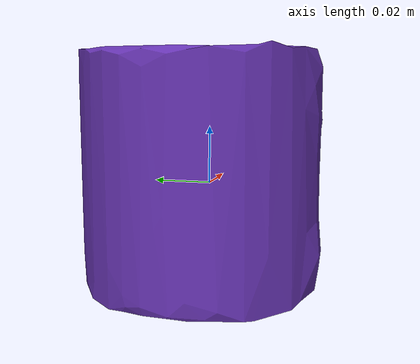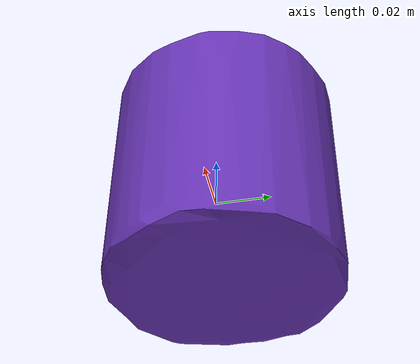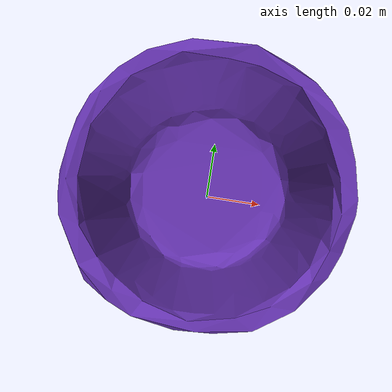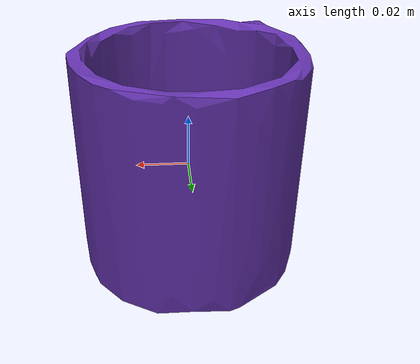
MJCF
<mujoco model="top_watertight_tiny">
  <default>
    <default group="2" type="mesh" contype="0" conaffinity="0">
      <geom group="2" type="mesh" contype="0" conaffinity="0"/>
    </default>
    <default group="3" type="mesh">
      <geom group="3" type="mesh"/>
    </default>
  </default>
  <asset>
    <mesh file="top_watertight_tiny.obj"/>
    <mesh file="top_watertight_tiny_collision_0.obj"/>
    <mesh file="top_watertight_tiny_collision_1.obj"/>
    <mesh file="top_watertight_tiny_collision_2.obj"/>
    <mesh file="top_watertight_tiny_collision_3.obj"/>
    <mesh file="top_watertight_tiny_collision_4.obj"/>
    <mesh file="top_watertight_tiny_collision_5.obj"/>
    <mesh file="top_watertight_tiny_collision_6.obj"/>
    <mesh file="top_watertight_tiny_collision_7.obj"/>
    <mesh file="top_watertight_tiny_collision_8.obj"/>
    <mesh file="top_watertight_tiny_collision_9.obj"/>
    <mesh file="top_watertight_tiny_collision_10.obj"/>
    <mesh file="top_watertight_tiny_collision_11.obj"/>
    <mesh file="top_watertight_tiny_collision_12.obj"/>
    <mesh file="top_watertight_tiny_collision_13.obj"/>
    <mesh file="top_watertight_tiny_collision_14.obj"/>
    <mesh file="top_watertight_tiny_collision_15.obj"/>
    <mesh file="top_watertight_tiny_collision_16.obj"/>
    <mesh file="top_watertight_tiny_collision_17.obj"/>
    <mesh file="top_watertight_tiny_collision_18.obj"/>
    <mesh file="top_watertight_tiny_collision_19.obj"/>
    <mesh file="top_watertight_tiny_collision_20.obj"/>
    <mesh file="top_watertight_tiny_collision_21.obj"/>
    <mesh file="top_watertight_tiny_collision_22.obj"/>
    <mesh file="top_watertight_tiny_collision_23.obj"/>
    <mesh file="top_watertight_tiny_collision_24.obj"/>
    <mesh file="top_watertight_tiny_collision_25.obj"/>
    <mesh file="top_watertight_tiny_collision_26.obj"/>
    <mesh file="top_watertight_tiny_collision_27.obj"/>
    <mesh file="top_watertight_tiny_collision_28.obj"/>
    <mesh file="top_watertight_tiny_collision_29.obj"/>
    <mesh file="top_watertight_tiny_collision_30.obj"/>
    <mesh file="top_watertight_tiny_collision_31.obj"/>
    <mesh file="top_watertight_tiny_collision_32.obj"/>
    <mesh file="top_watertight_tiny_collision_33.obj"/>
    <mesh file="top_watertight_tiny_collision_34.obj"/>
    <mesh file="top_watertight_tiny_collision_35.obj"/>
    <mesh file="top_watertight_tiny_collision_36.obj"/>
    <mesh file="top_watertight_tiny_collision_37.obj"/>
    <mesh file="top_watertight_tiny_collision_38.obj"/>
    <mesh file="top_watertight_tiny_collision_39.obj"/>
    <mesh file="top_watertight_tiny_collision_40.obj"/>
    <mesh file="top_watertight_tiny_collision_41.obj"/>
    <mesh file="top_watertight_tiny_collision_42.obj"/>
    <mesh file="top_watertight_tiny_collision_43.obj"/>
    <mesh file="top_watertight_tiny_collision_44.obj"/>
    <mesh file="top_watertight_tiny_collision_45.obj"/>
    <mesh file="top_watertight_tiny_collision_46.obj"/>
    <mesh file="top_watertight_tiny_collision_47.obj"/>
    <mesh file="top_watertight_tiny_collision_48.obj"/>
    <mesh file="top_watertight_tiny_collision_49.obj"/>
    <mesh file="top_watertight_tiny_collision_50.obj"/>
    <mesh file="top_watertight_tiny_collision_51.obj"/>
    <mesh file="top_watertight_tiny_collision_52.obj"/>
    <mesh file="top_watertight_tiny_collision_53.obj"/>
    <mesh file="top_watertight_tiny_collision_54.obj"/>
    <mesh file="top_watertight_tiny_collision_55.obj"/>
    <mesh file="top_watertight_tiny_collision_56.obj"/>
    <mesh file="top_watertight_tiny_collision_57.obj"/>
    <mesh file="top_watertight_tiny_collision_58.obj"/>
    <mesh file="top_watertight_tiny_collision_59.obj"/>
    <mesh file="top_watertight_tiny_collision_60.obj"/>
    <mesh file="top_watertight_tiny_collision_61.obj"/>
    <mesh file="top_watertight_tiny_collision_62.obj"/>
    <mesh file="top_watertight_tiny_collision_63.obj"/>
    <mesh file="top_watertight_tiny_collision_64.obj"/>
    <mesh file="top_watertight_tiny_collision_65.obj"/>
    <mesh file="top_watertight_tiny_collision_66.obj"/>
    <mesh file="top_watertight_tiny_collision_67.obj"/>
    <mesh file="top_watertight_tiny_collision_68.obj"/>
    <mesh file="top_watertight_tiny_collision_69.obj"/>
    <mesh file="top_watertight_tiny_collision_70.obj"/>
    <mesh file="top_watertight_tiny_collision_71.obj"/>
    <mesh file="top_watertight_tiny_collision_72.obj"/>
    <mesh file="top_watertight_tiny_collision_73.obj"/>
    <mesh file="top_watertight_tiny_collision_74.obj"/>
    <mesh file="top_watertight_tiny_collision_75.obj"/>
    <mesh file="top_watertight_tiny_collision_76.obj"/>
    <mesh file="top_watertight_tiny_collision_77.obj"/>
    <mesh file="top_watertight_tiny_collision_78.obj"/>
    <mesh file="top_watertight_tiny_collision_79.obj"/>
    <mesh file="top_watertight_tiny_collision_80.obj"/>
    <mesh file="top_watertight_tiny_collision_81.obj"/>
    <mesh file="top_watertight_tiny_collision_82.obj"/>
    <mesh file="top_watertight_tiny_collision_83.obj"/>
    <mesh file="top_watertight_tiny_collision_84.obj"/>
    <mesh file="top_watertight_tiny_collision_85.obj"/>
    <mesh file="top_watertight_tiny_collision_86.obj"/>
    <mesh file="top_watertight_tiny_collision_87.obj"/>
    <mesh file="top_watertight_tiny_collision_88.obj"/>
    <mesh file="top_watertight_tiny_collision_89.obj"/>
    <mesh file="top_watertight_tiny_collision_90.obj"/>
    <mesh file="top_watertight_tiny_collision_91.obj"/>
    <mesh file="top_watertight_tiny_collision_92.obj"/>
    <mesh file="top_watertight_tiny_collision_93.obj"/>
    <mesh file="top_watertight_tiny_collision_94.obj"/>
    <mesh file="top_watertight_tiny_collision_95.obj"/>
    <mesh file="top_watertight_tiny_collision_96.obj"/>
    <mesh file="top_watertight_tiny_collision_97.obj"/>
    <mesh file="top_watertight_tiny_collision_98.obj"/>
    <mesh file="top_watertight_tiny_collision_99.obj"/>
    <mesh file="top_watertight_tiny_collision_100.obj"/>
    <mesh file="top_watertight_tiny_collision_101.obj"/>
    <mesh file="top_watertight_tiny_collision_102.obj"/>
    <mesh file="top_watertight_tiny_collision_103.obj"/>
    <mesh file="top_watertight_tiny_collision_104.obj"/>
    <mesh file="top_watertight_tiny_collision_105.obj"/>
    <mesh file="top_watertight_tiny_collision_106.obj"/>
    <mesh file="top_watertight_tiny_collision_107.obj"/>
    <mesh file="top_watertight_tiny_collision_108.obj"/>
    <mesh file="top_watertight_tiny_collision_109.obj"/>
    <mesh file="top_watertight_tiny_collision_110.obj"/>
    <mesh file="top_watertight_tiny_collision_111.obj"/>
    <mesh file="top_watertight_tiny_collision_112.obj"/>
    <mesh file="top_watertight_tiny_collision_113.obj"/>
    <mesh file="top_watertight_tiny_collision_114.obj"/>
    <mesh file="top_watertight_tiny_collision_115.obj"/>
    <mesh file="top_watertight_tiny_collision_116.obj"/>
    <mesh file="top_watertight_tiny_collision_117.obj"/>
    <mesh file="top_watertight_tiny_collision_118.obj"/>
    <mesh file="top_watertight_tiny_collision_119.obj"/>
    <mesh file="top_watertight_tiny_collision_120.obj"/>
    <mesh file="top_watertight_tiny_collision_121.obj"/>
    <mesh file="top_watertight_tiny_collision_122.obj"/>
    <mesh file="top_watertight_tiny_collision_123.obj"/>
    <mesh file="top_watertight_tiny_collision_124.obj"/>
    <mesh file="top_watertight_tiny_collision_125.obj"/>
    <mesh file="top_watertight_tiny_collision_126.obj"/>
    <mesh file="top_watertight_tiny_collision_127.obj"/>
    <mesh file="top_watertight_tiny_collision_128.obj"/>
    <mesh file="top_watertight_tiny_collision_129.obj"/>
    <mesh file="top_watertight_tiny_collision_130.obj"/>
    <mesh file="top_watertight_tiny_collision_131.obj"/>
    <mesh file="top_watertight_tiny_collision_132.obj"/>
    <mesh file="top_watertight_tiny_collision_133.obj"/>
    <mesh file="top_watertight_tiny_collision_134.obj"/>
    <mesh file="top_watertight_tiny_collision_135.obj"/>
    <mesh file="top_watertight_tiny_collision_136.obj"/>
    <mesh file="top_watertight_tiny_collision_137.obj"/>
    <mesh file="top_watertight_tiny_collision_138.obj"/>
    <mesh file="top_watertight_tiny_collision_139.obj"/>
    <mesh file="top_watertight_tiny_collision_140.obj"/>
    <mesh file="top_watertight_tiny_collision_141.obj"/>
    <mesh file="top_watertight_tiny_collision_142.obj"/>
    <mesh file="top_watertight_tiny_collision_143.obj"/>
    <mesh file="top_watertight_tiny_collision_144.obj"/>
    <mesh file="top_watertight_tiny_collision_145.obj"/>
    <mesh file="top_watertight_tiny_collision_146.obj"/>
    <mesh file="top_watertight_tiny_collision_147.obj"/>
    <mesh file="top_watertight_tiny_collision_148.obj"/>
    <mesh file="top_watertight_tiny_collision_149.obj"/>
    <mesh file="top_watertight_tiny_collision_150.obj"/>
    <mesh file="top_watertight_tiny_collision_151.obj"/>
    <mesh file="top_watertight_tiny_collision_152.obj"/>
    <mesh file="top_watertight_tiny_collision_153.obj"/>
    <mesh file="top_watertight_tiny_collision_154.obj"/>
    <mesh file="top_watertight_tiny_collision_155.obj"/>
    <mesh file="top_watertight_tiny_collision_156.obj"/>
    <mesh file="top_watertight_tiny_collision_157.obj"/>
    <mesh file="top_watertight_tiny_collision_158.obj"/>
    <mesh file="top_watertight_tiny_collision_159.obj"/>
    <mesh file="top_watertight_tiny_collision_160.obj"/>
    <mesh file="top_watertight_tiny_collision_161.obj"/>
    <mesh file="top_watertight_tiny_collision_162.obj"/>
    <mesh file="top_watertight_tiny_collision_163.obj"/>
    <mesh file="top_watertight_tiny_collision_164.obj"/>
    <mesh file="top_watertight_tiny_collision_165.obj"/>
    <mesh file="top_watertight_tiny_collision_166.obj"/>
    <mesh file="top_watertight_tiny_collision_167.obj"/>
    <mesh file="top_watertight_tiny_collision_168.obj"/>
    <mesh file="top_watertight_tiny_collision_169.obj"/>
    <mesh file="top_watertight_tiny_collision_170.obj"/>
    <mesh file="top_watertight_tiny_collision_171.obj"/>
    <mesh file="top_watertight_tiny_collision_172.obj"/>
    <mesh file="top_watertight_tiny_collision_173.obj"/>
    <mesh file="top_watertight_tiny_collision_174.obj"/>
    <mesh file="top_watertight_tiny_collision_175.obj"/>
    <mesh file="top_watertight_tiny_collision_176.obj"/>
    <mesh file="top_watertight_tiny_collision_177.obj"/>
    <mesh file="top_watertight_tiny_collision_178.obj"/>
    <mesh file="top_watertight_tiny_collision_179.obj"/>
    <mesh file="top_watertight_tiny_collision_180.obj"/>
    <mesh file="top_watertight_tiny_collision_181.obj"/>
    <mesh file="top_watertight_tiny_collision_182.obj"/>
    <mesh file="top_watertight_tiny_collision_183.obj"/>
    <mesh file="top_watertight_tiny_collision_184.obj"/>
    <mesh file="top_watertight_tiny_collision_185.obj"/>
    <mesh file="top_watertight_tiny_collision_186.obj"/>
    <mesh file="top_watertight_tiny_collision_187.obj"/>
    <mesh file="top_watertight_tiny_collision_188.obj"/>
    <mesh file="top_watertight_tiny_collision_189.obj"/>
    <mesh file="top_watertight_tiny_collision_190.obj"/>
    <mesh file="top_watertight_tiny_collision_191.obj"/>
    <mesh file="top_watertight_tiny_collision_192.obj"/>
    <mesh file="top_watertight_tiny_collision_193.obj"/>
    <mesh file="top_watertight_tiny_collision_194.obj"/>
    <mesh file="top_watertight_tiny_collision_195.obj"/>
    <mesh file="top_watertight_tiny_collision_196.obj"/>
    <mesh file="top_watertight_tiny_collision_197.obj"/>
    <mesh file="top_watertight_tiny_collision_198.obj"/>
    <mesh file="top_watertight_tiny_collision_199.obj"/>
    <mesh file="top_watertight_tiny_collision_200.obj"/>
    <mesh file="top_watertight_tiny_collision_201.obj"/>
    <mesh file="top_watertight_tiny_collision_202.obj"/>
  </asset>
  <worldbody>
    <body name="top_watertight_tiny">
      <freejoint/>
      <geom mesh="top_watertight_tiny" group="2" type="mesh" rgba="0.4 0.2 0.7 1" contype="0" conaffinity="0"/>
      <geom mesh="top_watertight_tiny_collision_0" rgba="0.5142569149895492 0.4028784056796456 0.12472820860966638 1" group="3" type="mesh"/>
      <geom mesh="top_watertight_tiny_collision_1" rgba="0.12598872113837778 0.472261269850511 0.6646398829358032 1" group="3" type="mesh"/>
      <geom mesh="top_watertight_tiny_collision_2" rgba="0.14325315993852206 0.9929174780598744 0.289616131636783 1" group="3" type="mesh"/>
      <geom mesh="top_watertight_tiny_collision_3" rgba="0.4963522219700963 0.7538985264311836 0.8376818458728023 1" group="3" type="mesh"/>
      <geom mesh="top_watertight_tiny_collision_4" rgba="0.9957888750485467 0.8850339782636738 0.8004807364466267 1" group="3" type="mesh"/>
      <geom mesh="top_watertight_tiny_collision_5" rgba="0.02964998024524179 0.11544451310578296 0.5095602431639767 1" group="3" type="mesh"/>
      <geom mesh="top_watertight_tiny_collision_6" rgba="0.607688193933428 0.7295755148916955 0.22323535613933954 1" group="3" type="mesh"/>
      <geom mesh="top_watertight_tiny_collision_7" rgba="0.8198356422304849 0.4588857659043122 0.17468203134624216 1" group="3" type="mesh"/>
      <geom mesh="top_watertight_tiny_collision_8" rgba="0.4109202323005501 0.7865353193487384 0.8025968777486634 1" group="3" type="mesh"/>
      <geom mesh="top_watertight_tiny_collision_9" rgba="0.13245407167887435 0.870214486726726 0.07036848509018223 1" group="3" type="mesh"/>
      <geom mesh="top_watertight_tiny_collision_10" rgba="0.4477043144418468 0.24317269747876913 0.9888186315107121 1" group="3" type="mesh"/>
      <geom mesh="top_watertight_tiny_collision_11" rgba="0.8387652846737026 0.6045576386231928 0.8790665986751394 1" group="3" type="mesh"/>
      <geom mesh="top_watertight_tiny_collision_12" rgba="0.579833129389819 0.21482446532913557 0.627879127511125 1" group="3" type="mesh"/>
      <geom mesh="top_watertight_tiny_collision_13" rgba="0.11074216211688981 0.5432218166981729 0.49921623696065176 1" group="3" type="mesh"/>
      <geom mesh="top_watertight_tiny_collision_14" rgba="0.715747881127474 0.8036866196253701 0.6785291089003104 1" group="3" type="mesh"/>
      <geom mesh="top_watertight_tiny_collision_15" rgba="0.034020961984064346 0.7906066419840508 0.026587432173101888 1" group="3" type="mesh"/>
      <geom mesh="top_watertight_tiny_collision_16" rgba="0.15467964355230368 0.04544499319671058 0.8612668684640631 1" group="3" type="mesh"/>
      <geom mesh="top_watertight_tiny_collision_17" rgba="0.06119418619999595 0.2248204281367635 0.3147024627861853 1" group="3" type="mesh"/>
      <geom mesh="top_watertight_tiny_collision_18" rgba="0.570223509768119 0.902254032225745 0.4542139644159283 1" group="3" type="mesh"/>
      <geom mesh="top_watertight_tiny_collision_19" rgba="0.859953132350863 0.10136864570520865 0.8715195278851946 1" group="3" type="mesh"/>
      <geom mesh="top_watertight_tiny_collision_20" rgba="0.6037488457854419 0.15807487751888238 0.6835290228952923 1" group="3" type="mesh"/>
      <geom mesh="top_watertight_tiny_collision_21" rgba="0.6002284892819133 0.6315502652983798 0.2628929502040709 1" group="3" type="mesh"/>
      <geom mesh="top_watertight_tiny_collision_22" rgba="0.5468781331126176 0.6342653175360347 0.6406551652151523 1" group="3" type="mesh"/>
      <geom mesh="top_watertight_tiny_collision_23" rgba="0.06476708665361319 0.8012766053018897 0.39996037847751065 1" group="3" type="mesh"/>
      <geom mesh="top_watertight_tiny_collision_24" rgba="0.9135659159338279 0.0012921714451853417 0.24487407735726308 1" group="3" type="mesh"/>
      <geom mesh="top_watertight_tiny_collision_25" rgba="0.48588806666911377 0.6094159735392581 0.9695454978841802 1" group="3" type="mesh"/>
      <geom mesh="top_watertight_tiny_collision_26" rgba="0.06477115262206878 0.641116407507709 0.2577898116572427 1" group="3" type="mesh"/>
      <geom mesh="top_watertight_tiny_collision_27" rgba="0.280176198842775 0.8413351117251165 0.3798523868600854 1" group="3" type="mesh"/>
      <geom mesh="top_watertight_tiny_collision_28" rgba="0.007339012445196524 0.6974551694501596 0.7328326814803303 1" group="3" type="mesh"/>
      <geom mesh="top_watertight_tiny_collision_29" rgba="0.8218486324470013 0.035029587897652315 0.6126799499211816 1" group="3" type="mesh"/>
      <geom mesh="top_watertight_tiny_collision_30" rgba="0.13876620527068217 0.47858419061718793 0.006230233682857134 1" group="3" type="mesh"/>
      <geom mesh="top_watertight_tiny_collision_31" rgba="0.3179496493202183 0.9318993565794695 0.37483485383947446 1" group="3" type="mesh"/>
      <geom mesh="top_watertight_tiny_collision_32" rgba="0.48131051538156044 0.42649109025557397 0.2032680342900074 1" group="3" type="mesh"/>
      <geom mesh="top_watertight_tiny_collision_33" rgba="0.1545929992080035 0.9081246341230945 0.08590773038864563 1" group="3" type="mesh"/>
      <geom mesh="top_watertight_tiny_collision_34" rgba="0.2879007096157965 0.16543446283952412 0.01889046989890919 1" group="3" type="mesh"/>
      <geom mesh="top_watertight_tiny_collision_35" rgba="0.6240167646190452 0.03825076328762467 0.44876742924817414 1" group="3" type="mesh"/>
      <geom mesh="top_watertight_tiny_collision_36" rgba="0.30350625681836374 0.2510697860255098 0.04941410763637055 1" group="3" type="mesh"/>
      <geom mesh="top_watertight_tiny_collision_37" rgba="0.08361431805413233 0.9918703682426785 0.75307690013631 1" group="3" type="mesh"/>
      <geom mesh="top_watertight_tiny_collision_38" rgba="0.5534518008713998 0.4125123899823966 0.19120026314972594 1" group="3" type="mesh"/>
      <geom mesh="top_watertight_tiny_collision_39" rgba="0.44633004397816944 0.8608129720264853 0.9126183748867792 1" group="3" type="mesh"/>
      <geom mesh="top_watertight_tiny_collision_40" rgba="0.7898369572126378 0.379065891751043 0.11746996471758331 1" group="3" type="mesh"/>
      <geom mesh="top_watertight_tiny_collision_41" rgba="0.2085625629136414 0.33104137017016055 0.12712121271646415 1" group="3" type="mesh"/>
      <geom mesh="top_watertight_tiny_collision_42" rgba="0.35019722616979454 0.9249790834706677 0.9596856179929996 1" group="3" type="mesh"/>
      <geom mesh="top_watertight_tiny_collision_43" rgba="0.5643405648346062 0.23163341991082387 0.9529896828035102 1" group="3" type="mesh"/>
      <geom mesh="top_watertight_tiny_collision_44" rgba="0.9269651641311993 0.3014404431795855 0.02258847939795383 1" group="3" type="mesh"/>
      <geom mesh="top_watertight_tiny_collision_45" rgba="0.8737505200855279 0.8968852870327596 0.34622404045461175 1" group="3" type="mesh"/>
      <geom mesh="top_watertight_tiny_collision_46" rgba="0.9311275566280077 0.08805609909251799 0.9855376946857057 1" group="3" type="mesh"/>
      <geom mesh="top_watertight_tiny_collision_47" rgba="0.026769709981269818 0.26733362958053764 0.24799036233601535 1" group="3" type="mesh"/>
      <geom mesh="top_watertight_tiny_collision_48" rgba="0.03358863380253718 0.9995513892928786 0.6273186905183735 1" group="3" type="mesh"/>
      <geom mesh="top_watertight_tiny_collision_49" rgba="0.470239467781815 0.3524405938203067 0.5985460168443323 1" group="3" type="mesh"/>
      <geom mesh="top_watertight_tiny_collision_50" rgba="0.8374360499561663 0.3367518906674897 0.27481554210642944 1" group="3" type="mesh"/>
      <geom mesh="top_watertight_tiny_collision_51" rgba="0.9932852922281511 0.625179750606273 0.9659402025792678 1" group="3" type="mesh"/>
      <geom mesh="top_watertight_tiny_collision_52" rgba="0.9650511818126684 0.9356266208249084 0.05923642090857828 1" group="3" type="mesh"/>
      <geom mesh="top_watertight_tiny_collision_53" rgba="0.10711333952281477 0.6953057631915052 0.55724475581988 1" group="3" type="mesh"/>
      <geom mesh="top_watertight_tiny_collision_54" rgba="0.7533459064362743 0.3872167656577098 0.6909172747395381 1" group="3" type="mesh"/>
      <geom mesh="top_watertight_tiny_collision_55" rgba="0.562568774102076 0.8209984773095618 0.454207245801975 1" group="3" type="mesh"/>
      <geom mesh="top_watertight_tiny_collision_56" rgba="0.6065724543297119 0.7466657404057645 0.4888968504486365 1" group="3" type="mesh"/>
      <geom mesh="top_watertight_tiny_collision_57" rgba="0.09691846928980019 0.7824971069397927 0.7856631517573763 1" group="3" type="mesh"/>
      <geom mesh="top_watertight_tiny_collision_58" rgba="0.5206239667389282 0.8120126672516965 0.4172257669599593 1" group="3" type="mesh"/>
      <geom mesh="top_watertight_tiny_collision_59" rgba="0.21058599875333406 0.5065684686992855 0.006634008868351304 1" group="3" type="mesh"/>
      <geom mesh="top_watertight_tiny_collision_60" rgba="0.6485356379509718 0.7262507273522177 0.9494127439787413 1" group="3" type="mesh"/>
      <geom mesh="top_watertight_tiny_collision_61" rgba="0.1532133805922674 0.10100709109470596 0.4299823298832237 1" group="3" type="mesh"/>
      <geom mesh="top_watertight_tiny_collision_62" rgba="0.09547100810713338 0.5723803817097405 0.0177133904037573 1" group="3" type="mesh"/>
      <geom mesh="top_watertight_tiny_collision_63" rgba="0.9731745345864684 0.3375116591725972 0.964266552904363 1" group="3" type="mesh"/>
      <geom mesh="top_watertight_tiny_collision_64" rgba="0.9249725592922908 0.22931212534447154 0.5322193277883382 1" group="3" type="mesh"/>
      <geom mesh="top_watertight_tiny_collision_65" rgba="0.2530964944157943 0.38268221233978583 0.28715449319708597 1" group="3" type="mesh"/>
      <geom mesh="top_watertight_tiny_collision_66" rgba="0.0604094683640769 0.6703317578587791 0.6703514052548014 1" group="3" type="mesh"/>
      <geom mesh="top_watertight_tiny_collision_67" rgba="0.2100179384740276 0.4621073887045073 0.6610895396951182 1" group="3" type="mesh"/>
      <geom mesh="top_watertight_tiny_collision_68" rgba="0.8513852122401298 0.2351696036253792 0.4337431739609493 1" group="3" type="mesh"/>
      <geom mesh="top_watertight_tiny_collision_69" rgba="0.5592607952302082 0.14663262867207005 0.6068582184300755 1" group="3" type="mesh"/>
      <geom mesh="top_watertight_tiny_collision_70" rgba="0.4453119006876245 0.7886335675137497 0.20654178903683762 1" group="3" type="mesh"/>
      <geom mesh="top_watertight_tiny_collision_71" rgba="0.20135614659734746 0.38278607353910343 0.448284946277547 1" group="3" type="mesh"/>
      <geom mesh="top_watertight_tiny_collision_72" rgba="0.39331318123276215 0.6395418478682166 0.2835886594463063 1" group="3" type="mesh"/>
      <geom mesh="top_watertight_tiny_collision_73" rgba="0.15153478533628306 0.2602565004365771 0.041759984858775745 1" group="3" type="mesh"/>
      <geom mesh="top_watertight_tiny_collision_74" rgba="0.27929401222479855 0.36644749266781007 0.3241990492712591 1" group="3" type="mesh"/>
      <geom mesh="top_watertight_tiny_collision_75" rgba="0.04957435121164866 0.6200345027811163 0.6210090056669192 1" group="3" type="mesh"/>
      <geom mesh="top_watertight_tiny_collision_76" rgba="0.12732888982804602 0.28013211389775006 0.14254099974339052 1" group="3" type="mesh"/>
      <geom mesh="top_watertight_tiny_collision_77" rgba="0.28095140941682084 0.9958141376447995 0.059984405416429576 1" group="3" type="mesh"/>
      <geom mesh="top_watertight_tiny_collision_78" rgba="0.860384946085762 0.037534500043347796 0.39900717318912005 1" group="3" type="mesh"/>
      <geom mesh="top_watertight_tiny_collision_79" rgba="0.4810747148194253 0.03965961600490697 0.7265998620671897 1" group="3" type="mesh"/>
      <geom mesh="top_watertight_tiny_collision_80" rgba="0.18156556885622344 0.1597153491660217 0.941440359451623 1" group="3" type="mesh"/>
      <geom mesh="top_watertight_tiny_collision_81" rgba="0.5827650059778993 0.5268738845876267 0.6288525475615643 1" group="3" type="mesh"/>
      <geom mesh="top_watertight_tiny_collision_82" rgba="0.15028671452467568 0.9899949581622922 0.12513993552358593 1" group="3" type="mesh"/>
      <geom mesh="top_watertight_tiny_collision_83" rgba="0.4133465365735032 0.015473669583861871 0.46888915271546483 1" group="3" type="mesh"/>
      <geom mesh="top_watertight_tiny_collision_84" rgba="0.5650460078447442 0.34595933206802987 0.9853500674909269 1" group="3" type="mesh"/>
      <geom mesh="top_watertight_tiny_collision_85" rgba="0.540588760009403 0.8876721935165165 0.8609565692366349 1" group="3" type="mesh"/>
      <geom mesh="top_watertight_tiny_collision_86" rgba="0.13027684480063706 0.7842224981268211 0.6233604805987819 1" group="3" type="mesh"/>
      <geom mesh="top_watertight_tiny_collision_87" rgba="0.875144045693271 0.4874658495936235 0.03144804033979798 1" group="3" type="mesh"/>
      <geom mesh="top_watertight_tiny_collision_88" rgba="0.9246654955336586 0.8994169329876446 0.48994572388678226 1" group="3" type="mesh"/>
      <geom mesh="top_watertight_tiny_collision_89" rgba="0.9072138645715876 0.447308890111742 0.9428442407401794 1" group="3" type="mesh"/>
      <geom mesh="top_watertight_tiny_collision_90" rgba="0.11628953774080575 0.12331321412632601 0.16284144569665449 1" group="3" type="mesh"/>
      <geom mesh="top_watertight_tiny_collision_91" rgba="0.18956926383657402 0.9581380372070609 0.8898968186301018 1" group="3" type="mesh"/>
      <geom mesh="top_watertight_tiny_collision_92" rgba="0.1637661620273333 0.08930116636765995 0.7555598090827013 1" group="3" type="mesh"/>
      <geom mesh="top_watertight_tiny_collision_93" rgba="0.8422162620564497 0.5577311969756168 0.6310191309637745 1" group="3" type="mesh"/>
      <geom mesh="top_watertight_tiny_collision_94" rgba="0.28518931227573785 0.291266660237974 0.05654170626465338 1" group="3" type="mesh"/>
      <geom mesh="top_watertight_tiny_collision_95" rgba="0.041708942938619376 0.16181415110590547 0.794588373604323 1" group="3" type="mesh"/>
      <geom mesh="top_watertight_tiny_collision_96" rgba="0.5936912123308948 0.8125824761489159 0.8078343293047962 1" group="3" type="mesh"/>
      <geom mesh="top_watertight_tiny_collision_97" rgba="0.16475005588798497 0.12056747760706732 0.1408021260728215 1" group="3" type="mesh"/>
      <geom mesh="top_watertight_tiny_collision_98" rgba="0.6352466543330487 0.7182654241950753 0.4159688010267981 1" group="3" type="mesh"/>
      <geom mesh="top_watertight_tiny_collision_99" rgba="0.9555604442669514 0.8624544447723677 0.6570774532766307 1" group="3" type="mesh"/>
      <geom mesh="top_watertight_tiny_collision_100" rgba="0.3661169331878492 0.07660607120084084 0.9973464292161492 1" group="3" type="mesh"/>
      <geom mesh="top_watertight_tiny_collision_101" rgba="0.4173568039865012 0.4706977744206602 0.5189731895256443 1" group="3" type="mesh"/>
      <geom mesh="top_watertight_tiny_collision_102" rgba="0.8932314339649833 0.461233025426404 0.28064622277634266 1" group="3" type="mesh"/>
      <geom mesh="top_watertight_tiny_collision_103" rgba="0.8714160727611222 0.12253324862511505 0.08724190189505898 1" group="3" type="mesh"/>
      <geom mesh="top_watertight_tiny_collision_104" rgba="0.5426219097547678 0.43502205235762426 0.960599932016211 1" group="3" type="mesh"/>
      <geom mesh="top_watertight_tiny_collision_105" rgba="0.2695473037569971 0.6831135252371214 0.22567547301677549 1" group="3" type="mesh"/>
      <geom mesh="top_watertight_tiny_collision_106" rgba="0.8530490550705718 0.21226673393379725 0.9777475752308131 1" group="3" type="mesh"/>
      <geom mesh="top_watertight_tiny_collision_107" rgba="0.01639780174125638 0.696941587302967 0.20635595715215804 1" group="3" type="mesh"/>
      <geom mesh="top_watertight_tiny_collision_108" rgba="0.529328056536862 0.6615972129354023 0.9224810918948118 1" group="3" type="mesh"/>
      <geom mesh="top_watertight_tiny_collision_109" rgba="0.03243553527584009 0.17093425098463766 0.2153897240070377 1" group="3" type="mesh"/>
      <geom mesh="top_watertight_tiny_collision_110" rgba="0.16948191132945367 0.9185964463119884 0.28840894150097773 1" group="3" type="mesh"/>
      <geom mesh="top_watertight_tiny_collision_111" rgba="0.8837943527181794 0.23381173345893236 0.34976762482921087 1" group="3" type="mesh"/>
      <geom mesh="top_watertight_tiny_collision_112" rgba="0.5468836470472822 0.6793607026046261 0.3963246182547149 1" group="3" type="mesh"/>
      <geom mesh="top_watertight_tiny_collision_113" rgba="0.954860862046076 0.7973721262062535 0.09184346335662119 1" group="3" type="mesh"/>
      <geom mesh="top_watertight_tiny_collision_114" rgba="0.9460967489415286 0.994618946413283 0.4617263937991214 1" group="3" type="mesh"/>
      <geom mesh="top_watertight_tiny_collision_115" rgba="0.08081773550605043 0.8349142299243439 0.1396000126544411 1" group="3" type="mesh"/>
      <geom mesh="top_watertight_tiny_collision_116" rgba="0.1446251380981397 0.499873057167214 0.3008679311429191 1" group="3" type="mesh"/>
      <geom mesh="top_watertight_tiny_collision_117" rgba="0.09025854518506293 0.36967872304440885 0.5043211992057104 1" group="3" type="mesh"/>
      <geom mesh="top_watertight_tiny_collision_118" rgba="0.7304734348854837 0.006020593771396743 0.7537548862919085 1" group="3" type="mesh"/>
      <geom mesh="top_watertight_tiny_collision_119" rgba="0.7966743162731419 0.41957024874667714 0.5702247783969582 1" group="3" type="mesh"/>
      <geom mesh="top_watertight_tiny_collision_120" rgba="0.02841078698890742 0.7011861679290451 0.34140926559172735 1" group="3" type="mesh"/>
      <geom mesh="top_watertight_tiny_collision_121" rgba="0.8804471652165519 0.8565792620171904 0.9623776924191739 1" group="3" type="mesh"/>
      <geom mesh="top_watertight_tiny_collision_122" rgba="0.25535653260060776 0.46555565784269304 0.504178805350543 1" group="3" type="mesh"/>
      <geom mesh="top_watertight_tiny_collision_123" rgba="0.645962987662368 0.4243396859670475 0.14712877940033986 1" group="3" type="mesh"/>
      <geom mesh="top_watertight_tiny_collision_124" rgba="0.20969456248760576 0.07295700758479984 0.3869495798853284 1" group="3" type="mesh"/>
      <geom mesh="top_watertight_tiny_collision_125" rgba="0.6417913298893917 0.13051907698674525 0.7515894368866273 1" group="3" type="mesh"/>
      <geom mesh="top_watertight_tiny_collision_126" rgba="0.0727763190672619 0.34387507219280833 0.249837210643845 1" group="3" type="mesh"/>
      <geom mesh="top_watertight_tiny_collision_127" rgba="0.16468988526045436 0.9523700828722326 0.38366600834998144 1" group="3" type="mesh"/>
      <geom mesh="top_watertight_tiny_collision_128" rgba="0.8468071159314178 0.5514411802295323 0.9360348837695655 1" group="3" type="mesh"/>
      <geom mesh="top_watertight_tiny_collision_129" rgba="0.24020666227395737 0.10095203198037628 0.7132813593544065 1" group="3" type="mesh"/>
      <geom mesh="top_watertight_tiny_collision_130" rgba="0.37871832639415115 0.8220159137321565 0.11177777191630056 1" group="3" type="mesh"/>
      <geom mesh="top_watertight_tiny_collision_131" rgba="0.29232384394198985 0.4618130302385479 0.2238419443618428 1" group="3" type="mesh"/>
      <geom mesh="top_watertight_tiny_collision_132" rgba="0.4341759369902405 0.4850559207242422 0.8813660153062804 1" group="3" type="mesh"/>
      <geom mesh="top_watertight_tiny_collision_133" rgba="0.7742497821313254 0.10280530341280925 0.519890561867105 1" group="3" type="mesh"/>
      <geom mesh="top_watertight_tiny_collision_134" rgba="0.8188559474056921 0.5811491490212948 0.8199362239148531 1" group="3" type="mesh"/>
      <geom mesh="top_watertight_tiny_collision_135" rgba="0.7710409767086756 0.42016046099489857 0.2103899511397206 1" group="3" type="mesh"/>
      <geom mesh="top_watertight_tiny_collision_136" rgba="0.5292191098207308 0.3784513525103519 0.7341782914643004 1" group="3" type="mesh"/>
      <geom mesh="top_watertight_tiny_collision_137" rgba="0.5886382033960348 0.21205512969397233 0.5659999674184263 1" group="3" type="mesh"/>
      <geom mesh="top_watertight_tiny_collision_138" rgba="0.5056707230785632 0.29836773237651837 0.16745089870613683 1" group="3" type="mesh"/>
      <geom mesh="top_watertight_tiny_collision_139" rgba="0.799241584700861 0.042144578671529986 0.2951751431487549 1" group="3" type="mesh"/>
      <geom mesh="top_watertight_tiny_collision_140" rgba="0.3168479894150473 0.21901369912885638 0.4641971863319583 1" group="3" type="mesh"/>
      <geom mesh="top_watertight_tiny_collision_141" rgba="0.5948153637698381 0.7474451689243021 0.6783386851234037 1" group="3" type="mesh"/>
      <geom mesh="top_watertight_tiny_collision_142" rgba="0.8983836461486868 0.9230425784902241 0.057663811481811544 1" group="3" type="mesh"/>
      <geom mesh="top_watertight_tiny_collision_143" rgba="0.2421726106272809 0.8150384085421538 0.7742554910999669 1" group="3" type="mesh"/>
      <geom mesh="top_watertight_tiny_collision_144" rgba="0.441985039806833 0.27086775638983207 0.23908290022591316 1" group="3" type="mesh"/>
      <geom mesh="top_watertight_tiny_collision_145" rgba="0.20762644437003064 0.024456004648984897 0.7148771139718006 1" group="3" type="mesh"/>
      <geom mesh="top_watertight_tiny_collision_146" rgba="0.39903012474872 0.9769409265788697 0.6965379261599273 1" group="3" type="mesh"/>
      <geom mesh="top_watertight_tiny_collision_147" rgba="0.35006587143266177 0.912819765286055 0.3132926116829132 1" group="3" type="mesh"/>
      <geom mesh="top_watertight_tiny_collision_148" rgba="0.6784099547141642 0.1342023767664523 0.2668952111900422 1" group="3" type="mesh"/>
      <geom mesh="top_watertight_tiny_collision_149" rgba="0.6746705157961019 0.996866157611996 0.11495392809193106 1" group="3" type="mesh"/>
      <geom mesh="top_watertight_tiny_collision_150" rgba="0.8651701396719738 0.525579465159112 0.3651792252195286 1" group="3" type="mesh"/>
      <geom mesh="top_watertight_tiny_collision_151" rgba="0.28341205804965697 0.680052279980687 0.17489157695839042 1" group="3" type="mesh"/>
      <geom mesh="top_watertight_tiny_collision_152" rgba="0.7102245999955092 0.6888750181991651 0.10142161438750485 1" group="3" type="mesh"/>
      <geom mesh="top_watertight_tiny_collision_153" rgba="0.8564170754856906 0.3761028758017779 0.5009378382472065 1" group="3" type="mesh"/>
      <geom mesh="top_watertight_tiny_collision_154" rgba="0.16178878336426816 0.10845476817352073 0.7988171290721614 1" group="3" type="mesh"/>
      <geom mesh="top_watertight_tiny_collision_155" rgba="0.7881939717529145 0.35018054318629155 0.7764201820246145 1" group="3" type="mesh"/>
      <geom mesh="top_watertight_tiny_collision_156" rgba="0.08015892499802524 0.011064849760760942 0.6763339278957655 1" group="3" type="mesh"/>
      <geom mesh="top_watertight_tiny_collision_157" rgba="0.5624828321972304 0.7554801750459774 0.9662264619769865 1" group="3" type="mesh"/>
      <geom mesh="top_watertight_tiny_collision_158" rgba="0.9121180324309273 0.20917461076152044 0.7519774146038289 1" group="3" type="mesh"/>
      <geom mesh="top_watertight_tiny_collision_159" rgba="0.3229874563955185 0.16249154140224775 0.8432602362696173 1" group="3" type="mesh"/>
      <geom mesh="top_watertight_tiny_collision_160" rgba="0.6429284348778798 0.4366776405314261 0.12280344921000752 1" group="3" type="mesh"/>
      <geom mesh="top_watertight_tiny_collision_161" rgba="0.6028762124189689 0.07451473931367003 0.21868670230549958 1" group="3" type="mesh"/>
      <geom mesh="top_watertight_tiny_collision_162" rgba="0.8801468839175922 0.5548328972115995 0.18893424785728863 1" group="3" type="mesh"/>
      <geom mesh="top_watertight_tiny_collision_163" rgba="0.4906946638466896 0.09588872164118734 0.38836572189947727 1" group="3" type="mesh"/>
      <geom mesh="top_watertight_tiny_collision_164" rgba="0.47169681648998263 0.46198059390189816 0.05872423305179697 1" group="3" type="mesh"/>
      <geom mesh="top_watertight_tiny_collision_165" rgba="0.012748588629745594 0.73646860195961 0.5751265502084937 1" group="3" type="mesh"/>
      <geom mesh="top_watertight_tiny_collision_166" rgba="0.4202661231881407 0.7772527390257794 0.7941006176631087 1" group="3" type="mesh"/>
      <geom mesh="top_watertight_tiny_collision_167" rgba="0.04644836741672276 0.25305206749249476 0.3246411318638651 1" group="3" type="mesh"/>
      <geom mesh="top_watertight_tiny_collision_168" rgba="0.23928233281322608 0.8768368381366085 0.37974986576987635 1" group="3" type="mesh"/>
      <geom mesh="top_watertight_tiny_collision_169" rgba="0.1567761506470352 0.8743269039939521 0.30410835291387495 1" group="3" type="mesh"/>
      <geom mesh="top_watertight_tiny_collision_170" rgba="0.17899960116110147 0.6770281445013517 0.26826890483443133 1" group="3" type="mesh"/>
      <geom mesh="top_watertight_tiny_collision_171" rgba="0.7347894862304039 0.03282194487122081 0.24671520677518366 1" group="3" type="mesh"/>
      <geom mesh="top_watertight_tiny_collision_172" rgba="0.00829053633219623 0.617073449055149 0.916103131216104 1" group="3" type="mesh"/>
      <geom mesh="top_watertight_tiny_collision_173" rgba="0.12737756995815297 0.46429789949129385 0.5966080220707151 1" group="3" type="mesh"/>
      <geom mesh="top_watertight_tiny_collision_174" rgba="0.24236193314166798 0.03200187499162532 0.5446311188465307 1" group="3" type="mesh"/>
      <geom mesh="top_watertight_tiny_collision_175" rgba="0.9359733900205072 0.10250225036811178 0.7272145644577668 1" group="3" type="mesh"/>
      <geom mesh="top_watertight_tiny_collision_176" rgba="0.5251427329460795 0.33428013586123373 0.04956310874221792 1" group="3" type="mesh"/>
      <geom mesh="top_watertight_tiny_collision_177" rgba="0.11447958264175007 0.19678245656600424 0.727994445990114 1" group="3" type="mesh"/>
      <geom mesh="top_watertight_tiny_collision_178" rgba="0.516802303272445 0.44108641140197047 0.9647333552713407 1" group="3" type="mesh"/>
      <geom mesh="top_watertight_tiny_collision_179" rgba="0.8982261481552947 0.39385571642015615 0.5636610950538149 1" group="3" type="mesh"/>
      <geom mesh="top_watertight_tiny_collision_180" rgba="0.49708519959352515 0.9894237243524745 0.9311203239921513 1" group="3" type="mesh"/>
      <geom mesh="top_watertight_tiny_collision_181" rgba="0.03591437585909163 0.7934397698449972 0.8781631966142392 1" group="3" type="mesh"/>
      <geom mesh="top_watertight_tiny_collision_182" rgba="0.23792550662614353 0.05364216206772088 0.03980820753850389 1" group="3" type="mesh"/>
      <geom mesh="top_watertight_tiny_collision_183" rgba="0.32848469628773325 0.9574054707272716 0.9367938168097434 1" group="3" type="mesh"/>
      <geom mesh="top_watertight_tiny_collision_184" rgba="0.8767631157412935 0.8299311880718437 0.1543427538575095 1" group="3" type="mesh"/>
      <geom mesh="top_watertight_tiny_collision_185" rgba="0.6913143662257442 0.4242139673738864 0.5109075755716208 1" group="3" type="mesh"/>
      <geom mesh="top_watertight_tiny_collision_186" rgba="0.15256656078940645 0.9511467027245898 0.4118061160572343 1" group="3" type="mesh"/>
      <geom mesh="top_watertight_tiny_collision_187" rgba="0.8212922073200659 0.5822225159945443 0.676113045357682 1" group="3" type="mesh"/>
      <geom mesh="top_watertight_tiny_collision_188" rgba="0.22884250477010326 0.42820577668112914 0.321510210291337 1" group="3" type="mesh"/>
      <geom mesh="top_watertight_tiny_collision_189" rgba="0.1785662832901107 0.07585875679231302 0.685684655179252 1" group="3" type="mesh"/>
      <geom mesh="top_watertight_tiny_collision_190" rgba="0.9032808793563554 0.35793645643985683 0.2314673823440888 1" group="3" type="mesh"/>
      <geom mesh="top_watertight_tiny_collision_191" rgba="0.7745380302803774 0.1335093114088185 0.7581107000514535 1" group="3" type="mesh"/>
      <geom mesh="top_watertight_tiny_collision_192" rgba="0.4595351390245137 0.6443999787743578 0.21229858029826698 1" group="3" type="mesh"/>
      <geom mesh="top_watertight_tiny_collision_193" rgba="0.7372194314885513 0.8435029122468656 0.5523327607470072 1" group="3" type="mesh"/>
      <geom mesh="top_watertight_tiny_collision_194" rgba="0.5667276858985988 0.468891607074962 0.7807030725192559 1" group="3" type="mesh"/>
      <geom mesh="top_watertight_tiny_collision_195" rgba="0.8455624425279104 0.6409030552532544 0.6923130408778144 1" group="3" type="mesh"/>
      <geom mesh="top_watertight_tiny_collision_196" rgba="0.23115934689555329 0.6930598923040008 0.03630993647021141 1" group="3" type="mesh"/>
      <geom mesh="top_watertight_tiny_collision_197" rgba="0.8023998754472407 0.05059687842128391 0.48912027411804493 1" group="3" type="mesh"/>
      <geom mesh="top_watertight_tiny_collision_198" rgba="0.3220837111764788 0.3076444357016874 0.7013236513740875 1" group="3" type="mesh"/>
      <geom mesh="top_watertight_tiny_collision_199" rgba="0.17077236106412985 0.20937997469776204 0.356664145779363 1" group="3" type="mesh"/>
      <geom mesh="top_watertight_tiny_collision_200" rgba="0.6691316179850071 0.8478939787407925 0.6655356052112714 1" group="3" type="mesh"/>
      <geom mesh="top_watertight_tiny_collision_201" rgba="0.0624576573124247 0.26399134737368257 0.5040455518713053 1" group="3" type="mesh"/>
      <geom mesh="top_watertight_tiny_collision_202" rgba="0.3770808169943052 0.15332413519993637 0.5518186415509212 1" group="3" type="mesh"/>
    </body>
  </worldbody>
</mujoco>
